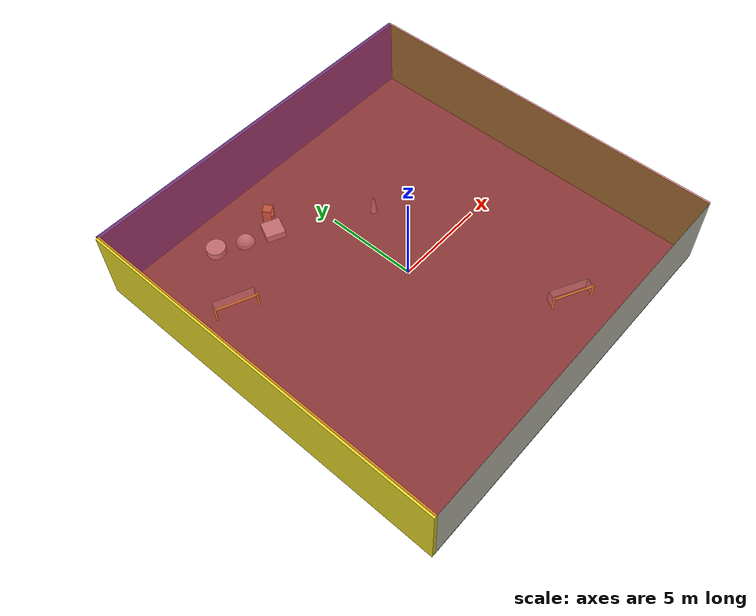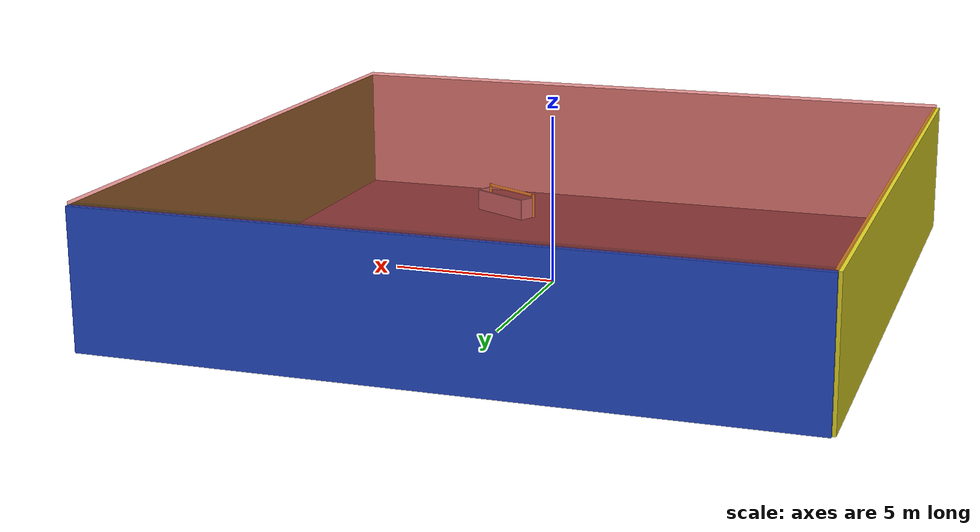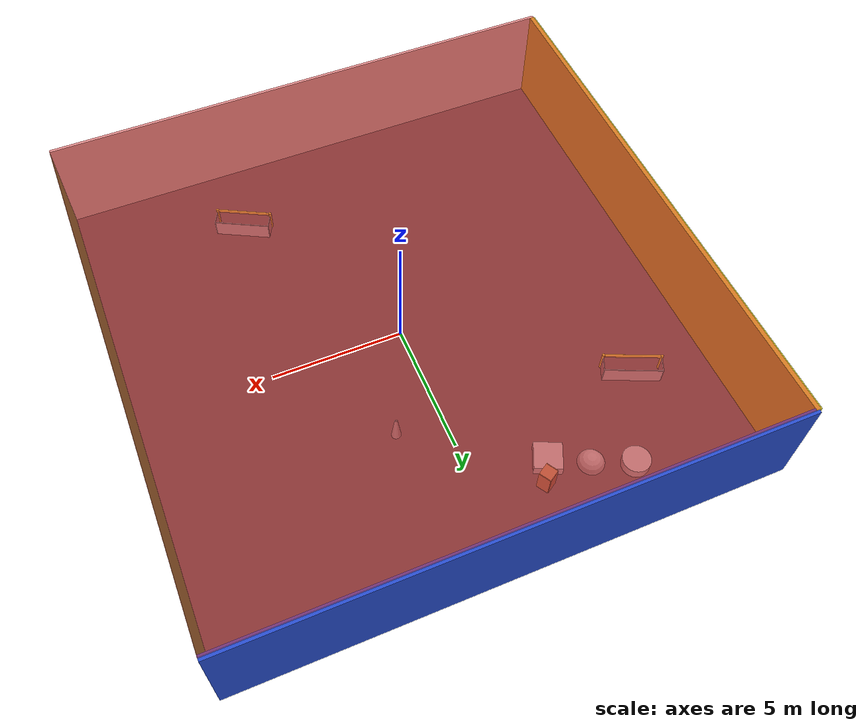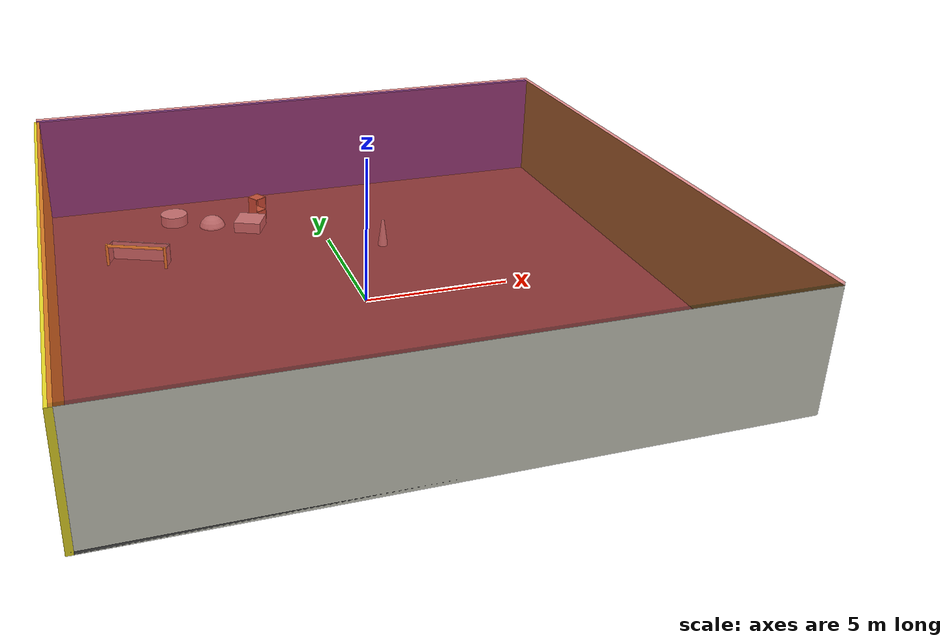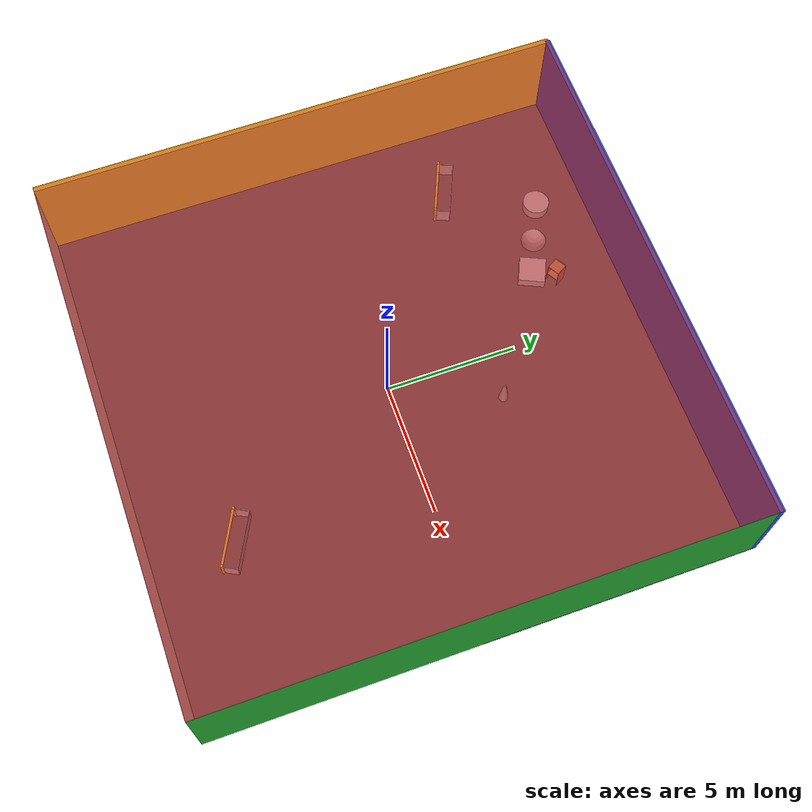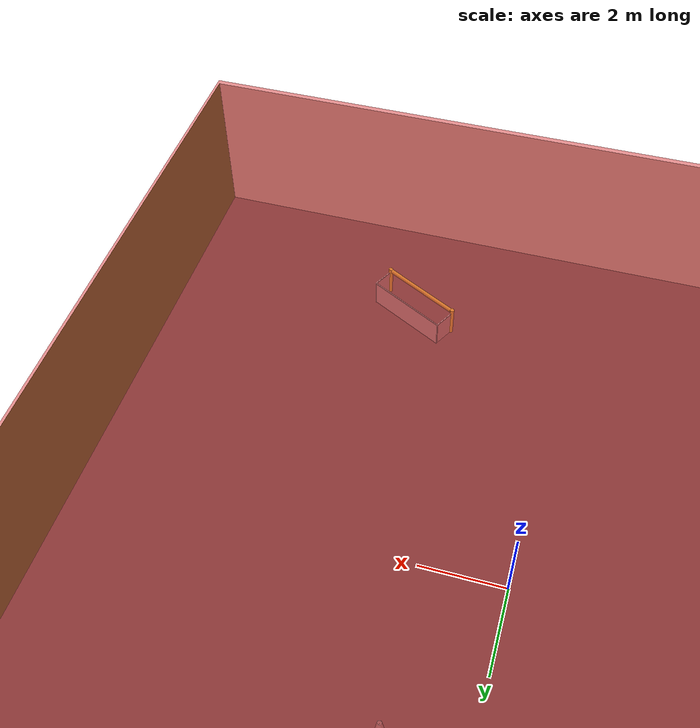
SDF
<sdf version="1.4">
 <world name="default">
  <physics type="ode">
   <max_step_size>0.001</max_step_size>
   <real_time_factor>1</real_time_factor>
   <real_time_update_rate>1000</real_time_update_rate>
   <gravity>0 0 -9.8</gravity>
  </physics>
  <scene><ambient>0.4 0.4 0.4 1</ambient><background>0.7 0.7 0.7 1</background><shadows>1</shadows></scene>
  <model name="Surrounding">
   <static>1</static>
   <link name="Ceiling">
    <collision name="Ceiling_Collision"><geometry><box><size>20 20 0.1</size></box></geometry></collision>
    <visual name="Ceiling_Visual">
     <geometry><box><size>20 20 0.1</size></box></geometry>
     <material>
      <script><uri>file://media/materials/scripts/gazebo.material</uri><name>Gazebo/RedTransparent</name></script>
     </material>
    </visual>
    <pose>0 0 4.05 0 0 0</pose>
   </link>
   <link name="Wall_South">
    <collision name="Wall_South_Collision">
     <geometry><box><size>20 0 4</size></box></geometry>
     <pose>0 0 2 0 -0 0</pose>
    </collision>
    <visual name="Wall_South_Visual">
     <pose>0 0 2 0 -0 0</pose>
     <geometry><box><size>20 0 4</size></box></geometry>
     <material>
      <script><uri>file://media/materials/scripts/gazebo.material</uri><name>Gazebo/PaintedWall</name></script>
     </material>
    </visual>
    <velocity_decay><linear>0</linear><angular>0</angular></velocity_decay>
    <pose>0 -10 0 0 -0 0</pose>
   </link>
   <link name="Wall_East">
    <collision name="Wall_21_Collision">
     <geometry><box><size>20 0 4</size></box></geometry>
     <pose>0 0 2 0 -0 0</pose>
    </collision>
    <visual name="Wall_21_Visual">
     <pose>0 0 2 0 -0 0</pose>
     <geometry><box><size>20 0 4</size></box></geometry>
     <material>
      <script><uri>file://media/materials/scripts/gazebo.material</uri><name>Gazebo/GreenGlow</name></script>
     </material>
    </visual>
    <velocity_decay><linear>0</linear><angular>0</angular></velocity_decay>
    <pose>10 0 0 0 -0 1.5708</pose>
   </link>
   <link name="Wall_North">
    <collision name="Wall_22_Collision">
     <geometry><box><size>20 0.2 4</size></box></geometry>
     <pose>0 0 2 0 -0 0</pose>
    </collision>
    <visual name="Wall_22_Visual">
     <pose>0 0 2 0 -0 0</pose>
     <geometry><box><size>20 0.2 4</size></box></geometry>
     <material>
      <script><uri>file://media/materials/scripts/gazebo.material</uri><name>Gazebo/Blue</name></script>
     </material>
    </visual>
    <velocity_decay><linear>0</linear><angular>0</angular></velocity_decay>
    <pose>0 10 0 0 -0 0</pose>
   </link>
   <link name="Wall_West">
    <collision name="Wall_23_Collision">
     <geometry><box><size>20 0.2 4</size></box></geometry>
     <pose>0 0 2 0 -0 0</pose>
    </collision>
    <visual name="Wall_23_Visual">
     <pose>0 0 2 0 -0 0</pose>
     <geometry><box><size>20 0.2 4</size></box></geometry>
     <material>
      <script><uri>file://media/materials/scripts/gazebo.material</uri><name>Gazebo/Yellow</name></script>
     </material>
    </visual>
    <velocity_decay><linear>0</linear><angular>0</angular></velocity_decay>
    <pose>-10 0 0 0 0 -1.5708</pose>
   </link>
   <link name="Ground_link">
    <collision name="collision">
     <pose>0 0 .05 0 -0 0</pose>
     <geometry><box><size>20 20 0.1</size></box></geometry>
    </collision>
    <visual name="visual">
     <pose>0 0 .05 0 -0 0</pose>
     <geometry><box><size>20 20 0.1</size></box></geometry>
     <material>
      <script><uri>file://media/materials/scripts/gazebo.material</uri><name>Gazebo/Road</name></script>
     </material>
    </visual>
   </link>
   <static>1</static>
  </model>
  <spherical_coordinates>
   <surface_model>EARTH_WGS84</surface_model>
   <latitude_deg>0</latitude_deg>
   <longitude_deg>0</longitude_deg>
   <elevation>0</elevation>
   <heading_deg>0</heading_deg>
  </spherical_coordinates>
  <light name="lightball_0" type="diffuse">
   <diffuse>0.8 0.8 0.8 1</diffuse>
   <specular>0.2 0.2 0.2 1</specular>
   <attenuation>
    <range>100</range>
    <constant>0.7</constant>
    <linear>0.01</linear>
    <quadratic>0.001</quadratic>
   </attenuation>
   <direction>-0.5 0.1 -0.9</direction>
   <pose>0.240797582029 8.31631441541 1.76458733491 0 0 0</pose>
  </light>
  <light name="lightball_1" type="diffuse">
   <diffuse>0.8 0.8 0.8 1</diffuse>
   <specular>0.2 0.2 0.2 1</specular>
   <attenuation>
    <range>100</range>
    <constant>0.7</constant>
    <linear>0.01</linear>
    <quadratic>0.001</quadratic>
   </attenuation>
   <direction>-0.5 0.1 -0.9</direction>
   <pose>-5.44849371714 7.13813275651 1.67621629683 0 0 0</pose>
  </light>
  <light name="lightball_2" type="diffuse">
   <diffuse>0.8 0.8 0.8 1</diffuse>
   <specular>0.2 0.2 0.2 1</specular>
   <attenuation>
    <range>100</range>
    <constant>0.7</constant>
    <linear>0.01</linear>
    <quadratic>0.001</quadratic>
   </attenuation>
   <direction>-0.5 0.1 -0.9</direction>
   <pose>-2.63797624986 9.06443566451 3.29234407006 0 0 0</pose>
  </light>
  <light name="lightball_3" type="diffuse">
   <diffuse>0.8 0.8 0.8 1</diffuse>
   <specular>0.2 0.2 0.2 1</specular>
   <attenuation>
    <range>100</range>
    <constant>0.7</constant>
    <linear>0.01</linear>
    <quadratic>0.001</quadratic>
   </attenuation>
   <direction>-0.5 0.1 -0.9</direction>
   <pose>-4.4651092861 -2.82081878737 2.45160010141 0 0 0</pose>
  </light>
  <light name="lightball_4" type="diffuse">
   <diffuse>0.8 0.8 0.8 1</diffuse>
   <specular>0.2 0.2 0.2 1</specular>
   <attenuation>
    <range>100</range>
    <constant>0.7</constant>
    <linear>0.01</linear>
    <quadratic>0.001</quadratic>
   </attenuation>
   <direction>-0.5 0.1 -0.9</direction>
   <pose>0.880031100389 -2.63069500629 2.4586755554 0 0 0</pose>
  </light>
  <include>
   <uri>model://robocup_3Dsim_goal</uri>
   <pose>-7.12051780676 4.5498567771 0 0 0 1.16123171753</pose>
  </include>
  <include>
   <uri>model://textured_shapes</uri>
   <pose>-4.00820645184 7.39640387268 0 0 0 1.13864639385</pose>
  </include>
  <include><uri>model://cabinet</uri><pose>-2.20317331039 7.53737990757 0 0 0 2.11490512944</pose></include>
  <include>
   <uri>model://construction_cone</uri>
   <pose>1.75775428967 3.87178512394 0 0 0 1.79289658114</pose>
  </include>
  <include>
   <uri>model://robocup_3Dsim_goal</uri>
   <pose>3.75996093674 -7.16735169409 0 0 0 1.08899765831</pose>
  </include>
 </world>
</sdf>

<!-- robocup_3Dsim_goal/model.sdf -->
<sdf version="1.5">
  <model name="robocup_3d_goal">
    <static>true</static>
    <link name="left_post">
      <pose>0 1.05 0.45 0 0 0</pose>
      <collision name="collision">
        <geometry>
          <cylinder>
            <radius>0.05</radius>
            <length>0.9</length>
          </cylinder>
        </geometry>
      </collision>
      <visual name="visual">
        <geometry>
          <cylinder>
            <radius>0.05</radius>
            <length>0.9</length>
          </cylinder>
        </geometry>
        <material>
          <script>
            <uri>file://media/materials/scripts/gazebo.material</uri>
            <name>Gazebo/ZincYellow</name>
          </script>
        </material>
      </visual>
    </link>
    <link name="left_support_horiz_lower">
      <pose>0.30 1.05 0.01 0 0 0</pose>
      <collision name="collision">
        <geometry>
          <box>
            <size>0.50 0.02 0.02</size>
          </box>
        </geometry>
      </collision>
      <visual name="visual">
        <geometry>
          <box>
            <size>0.50 0.02 0.02</size>
          </box>
        </geometry>
        <material>
          <script>
            <uri>file://media/materials/scripts/gazebo.material</uri>
            <name>Gazebo/White</name>
          </script>
        </material>
      </visual>
    </link>
    <link name="left_support_horiz_upper">
      <pose>0.30 1.05 0.79 0 0 0</pose>
      <collision name="collision">
        <geometry>
          <box>
            <size>0.50 0.02 0.02</size>
          </box>
        </geometry>
      </collision>
      <visual name="visual">
        <geometry>
          <box>
            <size>0.50 0.02 0.02</size>
          </box>
        </geometry>
        <material>
          <script>
            <uri>file://media/materials/scripts/gazebo.material</uri>
            <name>Gazebo/White</name>
          </script>
        </material>
      </visual>
    </link>
    <link name="left_support_vertical">
      <pose>0.56 1.05 0.4 0 1.5708 0</pose>
      <collision name="collision">
        <geometry>
          <box>
            <size>0.80 0.02 0.02</size>
          </box>
        </geometry>
      </collision>
      <visual name="visual">
        <geometry>
          <box>
            <size>0.80 0.02 0.02</size>
          </box>
        </geometry>
        <material>
          <script>
            <uri>file://media/materials/scripts/gazebo.material</uri>
            <name>Gazebo/White</name>
          </script>
        </material>
      </visual>
    </link>
    <link name="right_support_horiz_lower">
      <pose>0.30 -1.05 0.01 0 0 0</pose>
      <collision name="collision">
        <geometry>
          <box>
            <size>0.50 0.02 0.02</size>
          </box>
        </geometry>
      </collision>
      <visual name="visual">
        <geometry>
          <box>
            <size>0.50 0.02 0.02</size>
          </box>
        </geometry>
        <material>
          <script>
            <uri>file://media/materials/scripts/gazebo.material</uri>
            <name>Gazebo/White</name>
          </script>
        </material>
      </visual>
    </link>
    <link name="right_support_horiz_upper">
      <pose>0.30 -1.05 0.79 0 0 0</pose>
      <collision name="collision">
        <geometry>
          <box>
            <size>0.50 0.02 0.02</size>
          </box>
        </geometry>
      </collision>
      <visual name="visual">
        <geometry>
          <box>
            <size>0.50 0.02 0.02</size>
          </box>
        </geometry>
        <material>
          <script>
            <uri>file://media/materials/scripts/gazebo.material</uri>
            <name>Gazebo/White</name>
          </script>
        </material>
      </visual>
    </link>
    <link name="right_support_vertical">
      <pose>0.56 -1.05 0.4 0 1.5708 0</pose>
      <collision name="collision">
        <geometry>
          <box>
            <size>0.80 0.02 0.02</size>
          </box>
        </geometry>
      </collision>
      <visual name="visual">
        <geometry>
          <box>
            <size>0.80 0.02 0.02</size>
          </box>
        </geometry>
        <material>
          <script>
            <uri>file://media/materials/scripts/gazebo.material</uri>
            <name>Gazebo/White</name>
          </script>
        </material>
      </visual>
    </link>
    <link name="center_support_horiz_lower">
      <pose>0.56 0 0.01 0 1.5708 0</pose>
      <collision name="collision">
        <geometry>
          <box>
            <size>0.02 2.08 0.02</size>
          </box>
        </geometry>
      </collision>
      <visual name="visual">
        <geometry>
          <box>
            <size>0.02 2.08 0.02</size>
          </box>
        </geometry>
        <material>
          <script>
            <uri>file://media/materials/scripts/gazebo.material</uri>
            <name>Gazebo/White</name>
          </script>
        </material>
      </visual>
    </link>
    <link name="center_support_horiz_upper">
      <pose>0.56 0 0.79 0 1.5708 0</pose>
      <collision name="collision">
        <geometry>
          <box>
            <size>0.02 2.08 0.02</size>
          </box>
        </geometry>
      </collision>
      <visual name="visual">
        <geometry>
          <box>
            <size>0.02 2.08 0.02</size>
          </box>
        </geometry>
        <material>
          <script>
            <uri>file://media/materials/scripts/gazebo.material</uri>
            <name>Gazebo/White</name>
          </script>
        </material>
      </visual>
    </link>
    <link name="right_post">
      <pose>0 -1.05 0.45 0 0 0</pose>
      <collision name="collision">
        <geometry>
          <cylinder>
            <radius>0.05</radius>
            <length>0.9</length>
          </cylinder>
        </geometry>
      </collision>
      <visual name="visual">
        <geometry>
          <cylinder>
            <radius>0.05</radius>
            <length>0.9</length>
          </cylinder>
        </geometry>
        <material>
          <script>
            <uri>file://media/materials/scripts/gazebo.material</uri>
            <name>Gazebo/ZincYellow</name>
          </script>
        </material>
      </visual>
    </link>
    <link name="crossbar">
      <pose>0 0 0.85 1.57 1.57 0</pose>
      <collision name="collision">
        <geometry>
          <cylinder>
            <radius>0.05</radius>
            <length>2.0</length>
          </cylinder>
        </geometry>
      </collision>
      <visual name="visual">
        <geometry>
          <cylinder>
            <radius>0.05</radius>
            <length>2.0</length>
          </cylinder>
        </geometry>
        <material>
          <script>
            <uri>file://media/materials/scripts/gazebo.material</uri>
            <name>Gazebo/ZincYellow</name>
          </script>
        </material>
      </visual>
    </link>
    <link name="center_net">
      <pose>0.56 0 0.40 0 0 0</pose>
      <collision name="collision">
        <geometry>
          <box>
            <size>0.01 2.1 0.80</size>
          </box>
        </geometry>
      </collision>
      <visual name="visual">
        <geometry>
          <box>
            <size>0.01 2.1 0.80</size>
          </box>
        </geometry>
        <material>
          <script>
            <uri>model://../model_source/models/robocup09_spl_field/materials/scripts/</uri>
            <uri>model://../model_source/models/robocup09_spl_field/materials/textures/</uri>
            <name>RoboCup/Net</name>
          </script>
        </material>
      </visual>
    </link>
    <link name="left_net">
      <pose>0.30 1.05 0.40 0 0 0</pose>
      <collision name="collision">
        <geometry>
          <box>
            <size>0.50 0.01 0.76</size>
          </box>
        </geometry>
      </collision>
      <visual name="visual">
        <geometry>
          <box>
            <size>0.50 0.01 0.76</size>
          </box>
        </geometry>
        <material>
          <script>
            <uri>model://../model_source/models/robocup09_spl_field/materials/scripts/</uri>
            <uri>model://../model_source/models/robocup09_spl_field/materials/textures/</uri>
            <name>RoboCup/Net</name>
          </script>
        </material>
      </visual>
    </link>
    <link name="right_net">
      <pose>0.30 -1.05 0.40 0 0 0</pose>
      <collision name="collision">
        <geometry>
          <box>
            <size>0.50 0.01 0.76</size>
          </box>
        </geometry>
      </collision>
      <visual name="visual">
        <geometry>
          <box>
            <size>0.50 0.01 0.76</size>
          </box>
        </geometry>
        <material>
          <script>
            <uri>model://../model_source/models/robocup09_spl_field/materials/scripts/</uri>
            <uri>model://../model_source/models/robocup09_spl_field/materials/textures/</uri>
            <name>RoboCup/Net</name>
          </script>
        </material>
      </visual>
    </link>
  </model>
</sdf>

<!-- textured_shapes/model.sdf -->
<sdf version="1.6">
  <model name="textured_shapes">
    <pose>0 0 0.5 0 0 0</pose>
    <link name="box">
      <pose>0 -1.5 0 0 0 0</pose>
      <collision name="collision">
        <geometry>
          <box>
            <size>1 1 1</size>
          </box>
        </geometry>
      </collision>
      <visual name="visual">
        <geometry>
          <box>
            <size>1 1 1</size>
          </box>
        </geometry>
        <material>
          <script>
            <uri>model://../model_source/models/textured_shapes/materials/scripts</uri>
            <uri>model://../model_source/models/textured_shapes/materials/textures</uri>
            <name>TexturedShape/Squares</name>
          </script>
        </material>
      </visual>
    </link>
    <link name="sphere">
      <collision name="collision">
        <geometry>
          <sphere>
            <radius>0.5</radius>
          </sphere>
        </geometry>
      </collision>
      <visual name="visual">
        <geometry>
          <sphere>
            <radius>0.5</radius>
          </sphere>
        </geometry>
        <material>
          <script>
            <uri>model://../model_source/models/textured_shapes/materials/scripts</uri>
            <uri>model://../model_source/models/textured_shapes/materials/textures</uri>
            <name>TexturedShape/Squares</name>
          </script>
        </material>
      </visual>
    </link>
    <link name="cylinder">
      <pose>0 1.5 0 0 0 0</pose>
      <collision name="collision">
        <geometry>
          <cylinder>
            <radius>0.5</radius>
            <length>1</length>
          </cylinder>
        </geometry>
      </collision>
      <visual name="visual">
        <geometry>
          <cylinder>
            <radius>0.5</radius>
            <length>1</length>
          </cylinder>
        </geometry>
        <material>
          <script>
            <uri>model://../model_source/models/textured_shapes/materials/scripts</uri>
            <uri>model://../model_source/models/textured_shapes/materials/textures</uri>
            <name>TexturedShape/Squares</name>
          </script>
        </material>
      </visual>
    </link>
  </model>
</sdf>

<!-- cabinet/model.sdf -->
<sdf version="1.5">
  <model name="cabinet">
    <static>true</static>
    <link name="cabinet_bottom_plate">
      <inertial>
        <pose>0 0 -1 0 0 0</pose>
        <inertia>
          <ixx>2.050000</ixx>
          <ixy>0</ixy>
          <ixz>0</ixz>
          <iyy>2.050000</iyy>
          <iyz>0</iyz>
          <izz>2.050000</izz>
        </inertia>
        <mass>25.000000</mass>
      </inertial>
      <collision name="cabinet_bottom_plate_geom">
        <pose>0 0 0.010000 0 0 0</pose>
        <geometry>
          <box>
            <size>0.450000 0.450000 0.020000</size>
          </box>
        </geometry>
      </collision>
      <visual name="cabinet_bottom_plate_geom_visual">
        <pose>0 0 0.010000 0 0 0</pose>
        <geometry>
          <box>
            <size>0.450000 0.450000 0.020000</size>
          </box>
        </geometry>
        <material>
          <script>
            <uri>model://media/materials/scripts/gazebo.material</uri>
            <name>Gazebo/Wood</name>
          </script>
        </material>
      </visual>
      <collision name="cabinet_bottom_plate_geom_cabinet_back_plate">
        <pose>0.235000 0 0.510000 0 0 0</pose>
        <geometry>
          <box>
            <size>0.020000 0.450000 1.020000</size>
          </box>
        </geometry>
      </collision>
      <visual name="cabinet_bottom_plate_geom_cabinet_back_plate_visual">
        <pose>0.235000 0 0.510000 0 0 0</pose>
        <geometry>
          <box>
            <size>0.020000 0.450000 1.020000</size>
          </box>
        </geometry>
        <material>
          <script>
            <uri>model://media/materials/scripts/gazebo.material</uri>
            <name>Gazebo/Wood</name>
          </script>
        </material>
      </visual>
      <collision name="cabinet_bottom_plate_geom_cabinet_left_plate">
        <pose>0 0.235000 0.510000 0 0 0</pose>
        <geometry>
          <box>
            <size>0.450000 0.020000 1.020000</size>
          </box>
        </geometry>
      </collision>
      <visual name="cabinet_bottom_plate_geom_cabinet_left_plate_visual">
        <pose>0 0.235000 0.510000 0 0 0</pose>
        <geometry>
          <box>
            <size>0.450000 0.020000 1.020000</size>
          </box>
        </geometry>
        <material>
          <script>
            <uri>model://media/materials/scripts/gazebo.material</uri>
            <name>Gazebo/Wood</name>
          </script>
        </material>
      </visual>
      <collision name="cabinet_bottom_plate_geom_cabinet_middle_plate">
        <pose>0 0 0.510000 0 0 0</pose>
        <geometry>
          <box>
            <size>0.450000 0.450000 0.020000</size>
          </box>
        </geometry>
      </collision>
      <visual name="cabinet_bottom_plate_geom_cabinet_middle_plate_visual">
        <pose>0 0 0.510000 0 0 0</pose>
        <geometry>
          <box>
            <size>0.450000 0.450000 0.020000</size>
          </box>
        </geometry>
        <material>
          <script>
            <uri>model://media/materials/scripts/gazebo.material</uri>
            <name>Gazebo/Wood</name>
          </script>
        </material>
      </visual>
      <collision name="cabinet_bottom_plate_geom_cabinet_right_plate">
        <pose>0 -0.235000 0.510000 0 0 0</pose>
        <geometry>
          <box>
            <size>0.450000 0.020000 1.020000</size>
          </box>
        </geometry>
      </collision>
      <visual name="cabinet_bottom_plate_geom_cabinet_right_plate_visual">
        <pose>0 -0.235000 0.510000 0 0 0</pose>
        <geometry>
          <box>
            <size>0.450000 0.020000 1.020000</size>
          </box>
        </geometry>
        <material>
          <script>
            <uri>model://media/materials/scripts/gazebo.material</uri>
            <name>Gazebo/Wood</name>
          </script>
        </material>
      </visual>
      <collision name="cabinet_bottom_plate_geom_cabinet_top_plate">
        <pose>0 0 1.010000 0 0 0</pose>
        <geometry>
          <box>
            <size>0.450000 0.450000 0.020000</size>
          </box>
        </geometry>
      </collision>
      <visual name="cabinet_bottom_plate_geom_cabinet_top_plate_visual">
        <pose>0 0 1.010000 0 0 0</pose>
        <geometry>
          <box>
            <size>0.450000 0.450000 0.020000</size>
          </box>
        </geometry>
        <material>
          <script>
            <uri>model://media/materials/scripts/gazebo.material</uri>
            <name>Gazebo/Wood</name>
          </script>
        </material>
      </visual>
    </link>
  </model>
</sdf>

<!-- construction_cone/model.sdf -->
<sdf version="1.5">
  <model name="Construction Cone">
    <link name="link">
      <collision name="collision">
        <geometry>
          <mesh>
            <scale>10 10 10</scale>
            <uri>file://isr-testbed/construction_cone/meshes/construction_cone.dae</uri>
          </mesh>
        </geometry>
      </collision>
      <visual name="visual">
        <geometry>
          <mesh>
            <scale>10 10 10</scale>
            <uri>file://isr-testbed/construction_cone/meshes/construction_cone.dae</uri>
          </mesh>
        </geometry>
      </visual>
    </link>
  </model>
</sdf>
